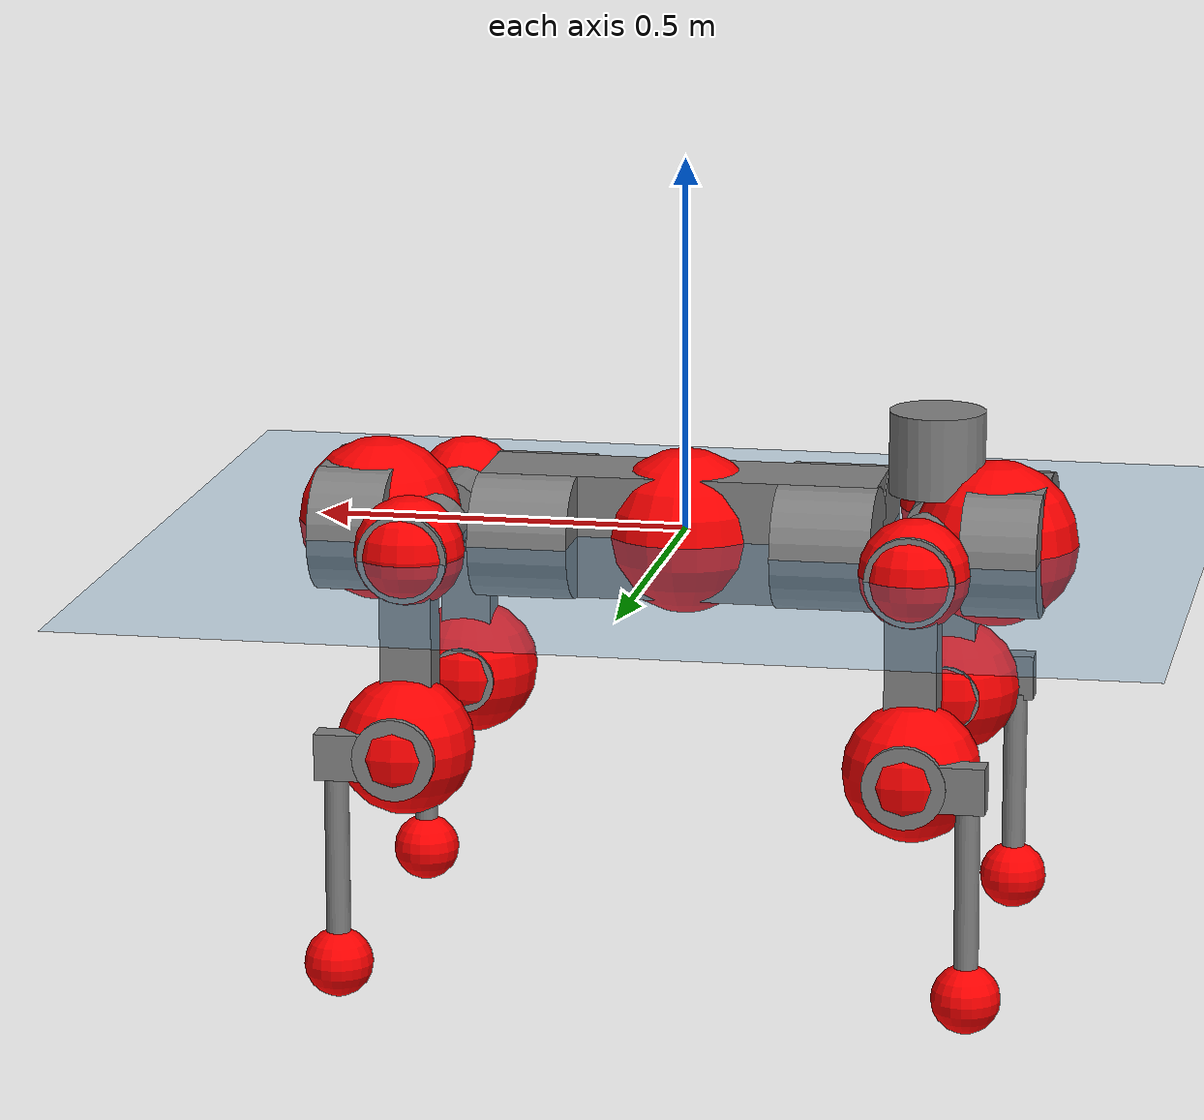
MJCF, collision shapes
<mujoco model="anymal_c">
  <compiler angle="radian" assetdir="assets" balanceinertia="true" inertiafromgeom="false"/>

  <option timestep="0.005" density="1.2" viscosity="2e-05"/>

  <size nkey="1"/>

  <visual>
    <quality shadowsize="8192"/>
    <map shadowclip="0.5"/>
  </visual>

  <default>
    <default class="/">
      <material specular="0" shininess="0.25"/>
      <geom contype="0" conaffinity="0" group="1" solref="-1000 -80"/>
      <site size="0.01 0.005 0.005" group="5"/>
      <general forcelimited="true" forcerange="-80 80" biastype="affine" gainprm="80" biasprm="0 -80 -2"/>
      <default class="anymal_c">
        <joint armature="0.01" damping="0.01" frictionloss="0.1"/>
        <default class="visual">
          <geom type="mesh" group="2"/>
          <default class="visual_zflip"/>
        </default>
        <default class="collision">
          <geom type="cylinder" group="3"/>
          <default class="foot">
            <geom size="0.03 0 0" type="sphere" condim="6" priority="1" friction="0.8 0.02 0.01" solimp="0.015 1 0.03"/>
          </default>
        </default>
      </default>
      <default class="reward_collision_sphere">
        <geom group="5" rgba="1 0 0 1"/>
      </default>
    </default>
  </default>

  <asset>
    <texture type="skybox" colorspace="auto" name="//unnamed_texture_0" builtin="gradient" rgb1="0.95 0.95 0.95" rgb2="0.95 0.95 0.95" width="100" height="600"/>
    <texture type="2d" colorspace="auto" name="texplane" builtin="checker" rgb1="0.345 0.575 0.748" rgb2="0.345 0.575 0.748" markrgb="1 1 1" width="512" height="512"/>
    <texture type="2d" colorspace="linear" name="base" file="base.png"/>
    <texture type="2d" colorspace="linear" name="top_shell" file="top_shell.png"/>
    <texture type="2d" colorspace="linear" name="bottom_shell" file="bottom_shell.png"/>
    <texture type="2d" colorspace="linear" name="remote" file="remote.png"/>
    <texture type="2d" colorspace="linear" name="hatch" file="hatch.png"/>
    <texture type="2d" colorspace="linear" name="handle" file="handle.png"/>
    <texture type="2d" colorspace="linear" name="face" file="face.png"/>
    <texture type="2d" colorspace="linear" name="battery" file="battery.png"/>
    <texture type="2d" colorspace="linear" name="lidar_cage" file="lidar_cage.png"/>
    <texture type="2d" colorspace="linear" name="depth_camera" file="depth_camera.png"/>
    <texture type="2d" colorspace="linear" name="wide_angle_camera" file="wide_angle_camera.png"/>
    <texture type="2d" colorspace="linear" name="lidar" file="lidar.png"/>
    <texture type="2d" colorspace="linear" name="drive" file="drive.png"/>
    <texture type="2d" colorspace="linear" name="hip_l" file="hip_l.png"/>
    <texture type="2d" colorspace="linear" name="shank_l" file="shank_l.png"/>
    <texture type="2d" colorspace="linear" name="foot" file="foot.png"/>
    <texture type="2d" colorspace="linear" name="thigh" file="thigh.png"/>
    <texture type="2d" colorspace="linear" name="shank_r" file="shank_r.png"/>
    <texture type="2d" colorspace="linear" name="hip_r" file="hip_r.png"/>
    <material name="MatPlane" class="/" texture="texplane" texuniform="true" texrepeat="2 2" specular="0.9" shininess="0.5"/>
    <material name="black_plastic" class="/" rgba="0.007 0.007 0.007 1"/>
    <material name="green" class="/" rgba="0.052 0.178 0.033 1"/>
    <material name="red" class="/" rgba="0.178 0.006 0.005 1"/>
    <material name="yellow" class="/" rgba="0.178 0.119 0.006 1"/>
    <material name="lwl" class="/" rgba="0.8 0.8 0.8 1"/>
    <material name="base" class="/" texture="base"/>
    <material name="top_shell" class="/" texture="top_shell"/>
    <material name="bottom_shell" class="/" texture="bottom_shell"/>
    <material name="hip_l" class="/" texture="hip_l"/>
    <material name="thigh" class="/" texture="thigh"/>
    <material name="shank_l" class="/" texture="shank_l"/>
    <material name="foot" class="/" texture="foot"/>
    <material name="hip_r" class="/" texture="hip_r"/>
    <material name="shank" class="/" texture="shank_r"/>
    <material name="hatch" class="/" texture="hatch"/>
    <material name="remote" class="/" texture="remote"/>
    <material name="handle" class="/" texture="handle"/>
    <material name="face" class="/" texture="face"/>
    <material name="depth_camera" class="/" texture="depth_camera"/>
    <material name="wide_angle_camera" class="/" texture="wide_angle_camera"/>
    <material name="battery" class="/" texture="battery"/>
    <material name="lidar_cage" class="/" texture="lidar_cage"/>
    <material name="lidar" class="/" texture="lidar"/>
    <material name="drive" class="/" texture="drive"/>
    <mesh name="base_0" class="/" file="base_0.obj"/>
    <mesh name="base_1" class="/" file="base_1.obj"/>
    <mesh name="base_2" class="/" file="base_2.obj"/>
    <mesh name="base_3" class="/" file="base_3.obj"/>
    <mesh name="base_4" class="/" file="base_4.obj"/>
    <mesh name="base_5" class="/" file="base_5.obj"/>
    <mesh name="top_shell" class="/" file="top_shell.obj"/>
    <mesh name="bottom_shell" class="/" file="bottom_shell.obj"/>
    <mesh name="remote" class="/" file="remote.obj"/>
    <mesh name="handle" class="/" file="handle.obj"/>
    <mesh name="face" class="/" file="face.obj"/>
    <mesh name="wide_angle_camera" class="/" file="wide_angle_camera.obj"/>
    <mesh name="depth_camera" class="/" file="depth_camera.obj"/>
    <mesh name="battery" class="/" file="battery.obj"/>
    <mesh name="lidar_cage" class="/" file="lidar_cage.obj"/>
    <mesh name="lidar" class="/" file="lidar.obj"/>
    <mesh name="drive" class="/" file="drive.obj"/>
    <mesh name="hip_l" class="/" file="hip_l.obj"/>
    <mesh name="thigh" class="/" file="thigh.obj"/>
    <mesh name="shank_l" class="/" file="shank_l.obj"/>
    <mesh name="foot" class="/" file="foot.obj"/>
    <mesh name="hip_r" class="/" file="hip_r.obj"/>
    <mesh name="hatch" class="/" file="hatch.obj"/>
    <mesh name="shank_r" class="/" file="shank_r.obj"/>
  </asset>

  <worldbody>
    <geom name="floor" class="/" size="100 100 0.125" type="plane" group="0" material="MatPlane"/>
    <light name="toplight_shadow" class="/" pos="0 0 5" dir="0.0990148 0.0990148 -0.990148" type="directional" ambient="0.04 0.04 0.04" diffuse="0.55 0.55 0.55" specular="0.12 0.12 0.12"/>
    <light name="toplight_fill" class="/" pos="0 0 5" dir="0.0990148 0.0990148 -0.990148" type="directional" castshadow="false" ambient="0.04 0.04 0.04" diffuse="0.3 0.3 0.3" specular="0.08 0.08 0.08"/>
    <body name="trunk" childclass="anymal_c" pos="-0.000335681 0.00176146 -0.00192736" quat="1 0.000171715 0.000433934 0.000219258">
      <inertial pos="0.000336301 0.00151152 0.0452455" quat="0.497258 0.499892 0.499984 0.50285" mass="15.2325" diaginertia="0.433202 0.407258 0.130608"/>
      <joint name="//unnamed_joint_0" type="free" armature="0" damping="0" frictionloss="0"/>
      <geom name="//unnamed_geom_1" class="visual" material="green" mesh="base_0"/>
      <geom name="//unnamed_geom_2" class="visual" material="yellow" mesh="base_1"/>
      <geom name="//unnamed_geom_3" class="visual" material="red" mesh="base_2"/>
      <geom name="//unnamed_geom_4" class="visual" material="black_plastic" mesh="base_3"/>
      <geom name="//unnamed_geom_5" class="visual" material="lwl" mesh="base_4"/>
      <geom name="//unnamed_geom_6" class="visual" material="base" mesh="base_5"/>
      <geom name="trunk_1" class="collision" size="0.266632 0.0643595 0.082748" type="box"/>
      <geom name="trunk_2" class="collision" size="0.082748 0.0666581" pos="0.202021 0.064449 0" quat="0.707107 0 0.707107 0"/>
      <geom name="trunk_3" class="collision" size="0.082748 0.0666581" pos="-0.202021 0.064449 0" quat="0.707107 0 0.707107 0"/>
      <geom name="trunk_4" class="collision" size="0.082748 0.0666581" pos="0.202021 -0.064449 0" quat="0.707107 0 0.707107 0"/>
      <geom name="trunk_5" class="collision" size="0.082748 0.0666581" pos="-0.202021 -0.064449 0" quat="0.707107 0 0.707107 0"/>
      <geom name="//unnamed_geom_12" class="visual" material="top_shell" mesh="top_shell"/>
      <geom name="//unnamed_geom_13" class="visual" material="bottom_shell" mesh="bottom_shell"/>
      <geom name="//unnamed_geom_14" class="visual" material="remote" mesh="remote"/>
      <geom name="//unnamed_geom_15" class="visual" material="handle" mesh="handle"/>
      <geom name="//unnamed_geom_16" class="visual" pos="0.385001 0 0" quat="1 0 0 0" material="face" mesh="face"/>
      <geom name="trunk_6" class="collision" size="0.0505682 0.0643595 0.082748" pos="0.436086 0 0" type="box"/>
      <geom name="//unnamed_geom_18" class="collision" size="0.082748 0.0505682" pos="0.436086 0.064449 0" quat="0.707107 0 0.707107 0"/>
      <geom name="//unnamed_geom_19" class="collision" size="0.082748 0.0505682" pos="0.436086 -0.064449 0" quat="0.707107 0 0.707107 0"/>
      <geom name="//unnamed_geom_20" class="visual" pos="0.428794 0 -0.0263823" quat="0.965926 0 0.258819 0" material="depth_camera" mesh="depth_camera"/>
      <geom name="//unnamed_geom_21" class="visual" pos="0.476491 0 0.0136037" material="wide_angle_camera" mesh="wide_angle_camera"/>
      <geom name="//unnamed_geom_22" class="visual_zflip" pos="-0.385001 0 0" quat="0 0 0 1" material="face" mesh="face"/>
      <geom name="trunk_7" class="collision" size="0.0505682 0.0643595 0.082748" pos="-0.436086 0 0" quat="0 0 0 1" type="box"/>
      <geom name="//unnamed_geom_24" class="collision" size="0.082748 0.0505682" pos="-0.436086 -0.064449 0" quat="0 -0.707107 0 0.707107"/>
      <geom name="//unnamed_geom_25" class="collision" size="0.082748 0.0505682" pos="-0.436086 0.064449 0" quat="0 -0.707107 0 0.707107"/>
      <geom name="//unnamed_geom_26" class="visual" pos="-0.428794 0 -0.0263823" quat="0 -0.258819 0 0.965926" material="depth_camera" mesh="depth_camera"/>
      <geom name="//unnamed_geom_27" class="visual_zflip" pos="-0.476491 0 0.0136037" quat="0 0 0 1" material="wide_angle_camera" mesh="wide_angle_camera"/>
      <geom name="//unnamed_geom_28" class="visual" material="battery" mesh="battery"/>
      <geom name="//unnamed_geom_29" class="visual" pos="0 0.0702892 0.0265514" quat="0.683013 -0.183013 0.183013 0.683013" material="depth_camera" mesh="depth_camera"/>
      <geom name="//unnamed_geom_30" class="visual" pos="0 -0.0702892 0.0265514" quat="0.683013 0.183013 0.183013 -0.683013" material="depth_camera" mesh="depth_camera"/>
      <geom name="//unnamed_geom_31" class="visual" pos="-0.338095 0 0.0667919" quat="1 0 0 0" material="lidar_cage" mesh="lidar_cage"/>
      <geom name="trunk_8" class="collision" size="0.0643595 0.0551653" pos="-0.338095 0 0.121316"/>
      <geom name="//unnamed_geom_33" class="visual" pos="-0.338095 -3.19442e-06 0.129222" quat="0.707107 0 0 -0.707107" material="lidar" mesh="lidar"/>
      <geom name="//unnamed_geom_34" class="visual" pos="0.278557 0.0957486 2.06443e-10" quat="0.258819 0.965926 0 0" material="drive" mesh="drive"/>
      <geom name="//unnamed_geom_35" class="visual" pos="0.278557 -0.0957486 -2.06443e-10" quat="0.258819 -0.965926 0 0" material="drive" mesh="drive"/>
      <geom name="//unnamed_geom_36" class="visual" pos="-0.278557 0.0957486 -2.06443e-10" quat="0 0 0.965926 -0.258819" material="drive" mesh="drive"/>
      <geom name="//unnamed_geom_37" class="visual" pos="-0.278557 -0.0957486 2.06443e-10" quat="0 0 -0.965926 -0.258819" material="drive" mesh="drive"/>
      <geom name="//unnamed_geom_38" class="visual" pos="0.107744 0 0.0663375" quat="1 0 0 0" material="hatch" mesh="hatch"/>
      <geom name="//unnamed_geom_39" class="reward_collision_sphere" size="0.110331"/>
      <geom name="//unnamed_geom_40" class="reward_collision_sphere" size="0.110331" pos="0.417974 0 0"/>
      <geom name="//unnamed_geom_41" class="reward_collision_sphere" size="0.110331" pos="-0.417974 0 0"/>
      <site name="imu" pos="0.239152 0.0275668 0.0291968" size="0.00919422"/>
      <camera name="track" pos="0 -1.8414 0" quat="0.707107 0.707107 0 0" mode="trackcom"/>
      <camera name="ego_camera" pos="0.417974 0 -0.0363493" quat="-0.5 -0.5 0.5 0.5"/>
      <body name="LF_HIP" pos="0.278528 0.0959426 0.0016835" quat="0.258437 0.966026 0.00148252 0.00087803">
        <inertial pos="0.0508477 -0.0131763 -0.00993536" quat="-0.128723 0.709878 -0.135593 0.679056" mass="2.09963" diaginertia="0.00392753 0.00313119 0.0020234"/>
        <joint name="LF_HAA" pos="0 0 0" axis="0.999958 -0.00672673 -0.00623182" range="-0.762902 0.501747" armature="0.00912864" damping="0.0145949" frictionloss="0.0831516"/>
        <geom name="//unnamed_geom_42" class="visual" pos="0 1.21441e-05 -1.99466e-06" quat="0.258819 -0.965926 0 0" material="hip_l" mesh="hip_l"/>
        <geom name="//unnamed_geom_43" class="visual" pos="0.055637 -0.0673048 -0.0387699" quat="0.183013 -0.683013 0.683013 0.183013" material="drive" mesh="drive"/>
        <geom name="//unnamed_geom_44" class="collision" size="0.0459711 0.0643595" pos="0.055637 -0.0110114 -0.0062748" quat="-0.353553 -0.612372 0.612372 -0.353553"/>
        <body name="LF_THIGH" pos="0.0557755 -0.0677657 -0.0427853" quat="0.183452 -0.682518 0.683301 0.183342">
          <inertial pos="0.0293608 0.00233272 -0.219241" quat="0.992586 -0.0129025 -0.0761444 0.0938593" mass="2.32222" diaginertia="0.0214547 0.0193649 0.00266628"/>
          <joint name="LF_HFE" pos="0 0 0" axis="0.999973 -0.00694355 0.00250104" stiffness="0.00977247" range="-3.13647 3.07124" armature="0.00843854" damping="0.0213858" frictionloss="0.0927493"/>
          <geom name="//unnamed_geom_45" class="visual" pos="0.000161774 2.54917e-07 0" quat="0.707107 0 0 -0.707107" material="thigh" mesh="thigh"/>
          <geom name="//unnamed_geom_46" class="collision" size="0.0597624 0.0367769" pos="0.0371533 0 0" quat="0.5 0.5 -0.5 -0.5"/>
          <geom name="//unnamed_geom_47" class="collision" size="0.0344783 0.0275827 0.129927" pos="0.0278649 0 -0.128417" quat="0.707107 0 0 -0.707107" type="box"/>
          <geom name="//unnamed_geom_48" class="visual" pos="0.0931618 0 -0.258989" quat="1 0 0 0" material="drive" mesh="drive"/>
          <geom name="//unnamed_geom_49" class="collision" size="0.0459711 0.0643595" pos="0.0281436 0 -0.258989" quat="0.707107 0 0.707107 0"/>
          <geom name="//unnamed_geom_50" class="reward_collision_sphere" size="0.0735537" pos="0.0232208 0 0"/>
          <body name="LF_SHANK" pos="0.089037 -0.00303269 -0.258323" quat="1 -1.36108e-05 -0.000134557 0.000155139">
            <inertial pos="0.00252806 -0.0579495 -0.0726827" quat="0.992877 -0.11628 -0.00138616 -0.0259197" mass="0.44051" diaginertia="0.00700772 0.00586562 0.00068651"/>
            <joint name="LF_KFE" pos="0 0 0" axis="0.999975 0.00696536 0.0013124" stiffness="0.0150334" range="-3.12519 3.17069" armature="0.00932125" damping="0.00929195" frictionloss="0.0850255"/>
            <geom name="//unnamed_geom_51" class="visual" pos="5.27508e-05 0.00028127 0" quat="0.707107 0 0 -0.707107" material="shank_l" mesh="shank_l"/>
            <geom name="LF_kfe_act" class="collision" size="0.0551653 0.0183884" pos="0.0185766 0 0" quat="0.5 0.5 -0.5 -0.5"/>
            <geom name="//unnamed_geom_53" class="collision" size="0.0528658 0.0310305 0.017469" pos="0.0185766 -0.0529394 0" quat="0.5 0.5 -0.5 -0.5" type="box"/>
            <geom name="//unnamed_geom_54" class="visual" pos="0.0121212 -0.080885 -0.307124" quat="0.382683 0 0 -0.92388" material="foot" mesh="foot"/>
            <geom name="LF_calf" class="collision" size="0.0160899 0.12987" pos="0.0121213 -0.0809756 -0.153562" quat="0.707107 0 0 -0.707107"/>
            <geom name="LF_foot" class="foot" size="0.0303167" pos="0.0121213 -0.0809756 -0.286678" quat="0.707107 0 0 -0.707107"/>
            <geom name="//unnamed_geom_57" class="reward_collision_sphere" size="0.0919422" pos="-0.0464416 0 0"/>
            <geom name="//unnamed_geom_58" class="reward_collision_sphere" size="0.0459711" pos="0.0121213 -0.0809756 -0.286678"/>
            <site name="LF_foot" class="foot" pos="0.0121213 -0.0809756 -0.286678" quat="0.707107 0 0 -0.707107" size="0.00919422"/>
          </body>
        </body>
      </body>
      <body name="RF_HIP" pos="0.280961 -0.0938365 -0.0023075" quat="0.258843 -0.965919 -5.27242e-05 -9.38072e-06">
        <inertial pos="0.0502208 0.013659 -0.00830901" quat="0.124278 0.682376 0.126392 0.709185" mass="2.09523" diaginertia="0.00382335 0.00323844 0.00202354"/>
        <joint name="RF_HAA" pos="0 0 0" axis="0.999991 -0.000580065 -0.0040912" range="-0.489029 0.726984" armature="0.00909232" damping="0.00625552" frictionloss="0.103942"/>
        <geom name="//unnamed_geom_59" class="visual" pos="0 -1.2144e-05 -1.99465e-06" quat="0.258819 0.965926 0 0" material="hip_r" mesh="hip_r"/>
        <geom name="//unnamed_geom_60" class="visual" pos="0.055637 0.0673048 -0.0387699" quat="0.183013 0.683013 0.683013 -0.183013" material="drive" mesh="drive"/>
        <geom name="//unnamed_geom_61" class="collision" size="0.0459711 0.0643595" pos="0.055637 0.0110114 -0.0062748" quat="-0.353553 0.612372 0.612372 0.353553"/>
        <body name="RF_THIGH" pos="0.0579518 0.0648869 -0.0379345" quat="0.182642 0.683377 0.682599 -0.183565">
          <inertial pos="0.0285416 -0.00028505 -0.22034" quat="0.991032 -0.0172703 -0.0797324 0.105828" mass="2.38502" diaginertia="0.0197759 0.0190956 0.00250422"/>
          <joint name="RF_HFE" pos="0 0 0" axis="0.999952 0.00737078 -0.00638242" stiffness="0.00700474" range="-3.08926 3.12924" armature="0.0094327" damping="0.0128385" frictionloss="0.103206"/>
          <geom name="//unnamed_geom_62" class="visual" pos="0.000161774 2.54917e-07 0" quat="0.707107 0 0 -0.707107" material="thigh" mesh="thigh"/>
          <geom name="//unnamed_geom_63" class="collision" size="0.0597624 0.0367769" pos="0.0371533 0 0" quat="0.5 0.5 0.5 0.5"/>
          <geom name="//unnamed_geom_64" class="collision" size="0.0344783 0.0275827 0.129927" pos="0.0278649 0 -0.128417" quat="0.707107 0 0 0.707107" type="box"/>
          <geom name="//unnamed_geom_65" class="visual" pos="0.0931618 0 -0.258989" quat="1 0 0 0" material="drive" mesh="drive"/>
          <geom name="//unnamed_geom_66" class="collision" size="0.0459711 0.0643595" pos="0.0281436 0 -0.258989" quat="0.707107 0 0.707107 0"/>
          <geom name="//unnamed_geom_67" class="reward_collision_sphere" size="0.0735537" pos="0.0232208 0 0"/>
          <body name="RF_SHANK" pos="0.0922511 0.000908917 -0.257552" quat="1 1.53634e-05 5.61607e-06 -4.38538e-05">
            <inertial pos="0.00777248 0.0560426 -0.0775422" quat="0.992989 0.116007 -0.00835418 0.0210947" mass="0.483535" diaginertia="0.00762562 0.00613368 0.000749049"/>
            <joint name="RF_KFE" pos="0 0 0" axis="0.999993 -0.00323173 0.00165142" range="-3.12492 3.1027" armature="0.00913669" damping="0.00994659" frictionloss="0.0926082"/>
            <geom name="//unnamed_geom_68" class="visual" pos="5.27505e-05 -0.00028127 0" quat="0.707107 0 0 0.707107" material="shank" mesh="shank_r"/>
            <geom name="RF_kfe_act" class="collision" size="0.0551653 0.0183884" pos="0.0185766 0 0" quat="0.5 0.5 0.5 0.5"/>
            <geom name="//unnamed_geom_70" class="collision" size="0.0528658 0.0310305 0.017469" pos="0.0185766 0.0529394 0" quat="0.5 0.5 0.5 0.5" type="box"/>
            <geom name="//unnamed_geom_71" class="visual" pos="0.0121213 0.080885 -0.307124" quat="0.382683 0 0 0.92388" material="foot" mesh="foot"/>
            <geom name="RF_calf" class="collision" size="0.0160899 0.12987" pos="0.0121213 0.0809756 -0.153562" quat="0.707107 0 0 0.707107"/>
            <geom name="RF_foot" class="foot" size="0.0298241" pos="0.0121213 0.0809756 -0.286678" quat="0.707107 0 0 0.707107"/>
            <geom name="//unnamed_geom_74" class="reward_collision_sphere" size="0.0919422" pos="-0.0464416 0 0"/>
            <geom name="//unnamed_geom_75" class="reward_collision_sphere" size="0.0459711" pos="0.0121213 0.0809756 -0.286678"/>
            <site name="RF_foot" class="foot" pos="0.0121213 0.0809756 -0.286678" quat="0.707107 0 0 0.707107" size="0.00919422"/>
          </body>
        </body>
      </body>
      <body name="LH_HIP" pos="-0.279473 0.0940994 0.00231105" quat="-0.000518928 0.000446342 0.965815 -0.259231">
        <inertial pos="0.0518626 0.0129278 -0.00552182" quat="0.132014 0.677236 0.121608 0.713537" mass="2.06631" diaginertia="0.00390792 0.00316652 0.00201929"/>
        <joint name="LH_HAA" pos="0 0 0" axis="1 0.000648215 -0.00031" stiffness="0.00365195" range="-0.562996 0.681619" armature="0.00935165" damping="0.000770667" frictionloss="0.0830301"/>
        <geom name="//unnamed_geom_76" class="visual" pos="0 -1.2144e-05 -1.99465e-06" quat="-0.258819 -0.965926 0 0" material="hip_r" mesh="hip_r"/>
        <geom name="//unnamed_geom_77" class="visual" pos="0.055637 0.0673048 -0.0387699" quat="0.183013 0.683013 0.683013 -0.183013" material="drive" mesh="drive"/>
        <geom name="//unnamed_geom_78" class="collision" size="0.0459711 0.0643595" pos="0.055637 0.0110114 -0.0062748" quat="-0.353553 0.612372 0.612372 0.353553"/>
        <body name="LH_THIGH" pos="0.0544343 0.0655134 -0.035684" quat="0.182936 0.6831 0.682907 -0.183158">
          <inertial pos="0.0303204 0.00165555 -0.219305" quat="0.992024 -0.0119003 -0.0862068 0.0911925" mass="2.38931" diaginertia="0.0222322 0.0202346 0.00274006"/>
          <joint name="LH_HFE" pos="0 0 0" axis="0.999968 -0.00115012 0.00789844" range="-3.10225 3.0912" armature="0.010379" damping="0.0204235" frictionloss="0.0957436"/>
          <geom name="//unnamed_geom_79" class="visual" pos="0.000161774 2.54917e-07 0" quat="0.707107 0 0 -0.707107" material="thigh" mesh="thigh"/>
          <geom name="//unnamed_geom_80" class="collision" size="0.0597624 0.0367769" pos="0.0371533 0 0" quat="0.5 0.5 -0.5 -0.5"/>
          <geom name="//unnamed_geom_81" class="collision" size="0.0344783 0.0275827 0.129927" pos="0.0278649 0 -0.128417" quat="0.707107 0 0 -0.707107" type="box"/>
          <geom name="//unnamed_geom_82" class="visual" pos="0.0931618 0 -0.258989" quat="1 0 0 0" material="drive" mesh="drive"/>
          <geom name="//unnamed_geom_83" class="collision" size="0.0459711 0.0643595" pos="0.0281436 0 -0.258989" quat="0.707107 0 0.707107 0"/>
          <geom name="//unnamed_geom_84" class="reward_collision_sphere" size="0.0735537" pos="0.0232208 0 0"/>
          <body name="LH_SHANK" pos="0.092171 0.00202404 -0.259185" quat="1 6.47918e-05 2.24571e-07 -0.000531371">
            <inertial pos="0.0066269 0.0550437 -0.0725758" quat="0.992586 0.118762 -0.00154915 0.0258044" mass="0.453775" diaginertia="0.00700145 0.0062507 0.000665881"/>
            <joint name="LH_KFE" pos="0 0 0" axis="0.999951 -0.000550352 -0.00988502" stiffness="0.0193747" range="-3.09247 3.14304" armature="0.00979331" damping="0.0185927" frictionloss="0.0984382"/>
            <geom name="//unnamed_geom_85" class="visual" pos="5.27505e-05 -0.00028127 0" quat="-0.707107 0 0 -0.707107" material="shank" mesh="shank_r"/>
            <geom name="LH_kfe_act" class="collision" size="0.0551653 0.0183884" pos="0.0185766 0 0" quat="0.5 0.5 -0.5 -0.5"/>
            <geom name="//unnamed_geom_87" class="collision" size="0.0528658 0.0310305 0.017469" pos="0.0185766 0.0529394 0" quat="0.5 0.5 -0.5 -0.5" type="box"/>
            <geom name="//unnamed_geom_88" class="visual" pos="0.0121213 0.080885 -0.307124" quat="-0.382683 0 0 -0.92388" material="foot" mesh="foot"/>
            <geom name="LH_calf" class="collision" size="0.0160899 0.12987" pos="0.0121213 0.0809756 -0.153562" quat="0.707107 0 0 -0.707107"/>
            <geom name="LH_foot" class="foot" size="0.0307801" pos="0.0121213 0.0809756 -0.286678" quat="0.707107 0 0 -0.707107"/>
            <geom name="//unnamed_geom_91" class="reward_collision_sphere" size="0.0919422" pos="-0.0464416 0 0"/>
            <geom name="//unnamed_geom_92" class="reward_collision_sphere" size="0.0459711" pos="0.0121213 0.0809756 -0.286678"/>
            <site name="LH_foot" class="foot" pos="0.0121213 0.0809756 -0.286678" quat="0.707107 0 0 -0.707107" size="0.00919422"/>
          </body>
        </body>
      </body>
      <body name="RH_HIP" pos="-0.278351 -0.0992215 -0.000464187" quat="-0.000991813 0.000471666 -0.965905 -0.258893">
        <inertial pos="0.0519136 -0.0158833 -0.00800981" quat="-0.127647 0.710481 -0.135993 0.678549" mass="2.3177" diaginertia="0.00411285 0.00329666 0.00213786"/>
        <joint name="RH_HAA" pos="0 0 0" axis="0.999938 0.000277881 0.0111604" range="-0.673977 0.504886" armature="0.00843921" damping="0.0142746" frictionloss="0.103772"/>
        <geom name="//unnamed_geom_93" class="visual" pos="0 1.21441e-05 -1.99466e-06" quat="-0.258819 0.965926 0 0" material="hip_l" mesh="hip_l"/>
        <geom name="//unnamed_geom_94" class="visual" pos="0.055637 -0.0673048 -0.0387699" quat="-0.183013 0.683013 -0.683013 -0.183013" material="drive" mesh="drive"/>
        <geom name="//unnamed_geom_95" class="collision" size="0.0459711 0.0643595" pos="0.055637 -0.0110114 -0.0062748" quat="0.353553 0.612372 -0.612372 0.353553"/>
        <body name="RH_THIGH" pos="0.0579805 -0.0661723 -0.0404668" quat="-0.183642 0.68284 -0.683099 -0.182704">
          <inertial pos="0.0276177 0.000301974 -0.223094" quat="0.993017 -0.00475487 -0.0814535 0.0852083" mass="2.4347" diaginertia="0.021712 0.0197278 0.00259764"/>
          <joint name="RH_HFE" pos="0 0 0" axis="0.999899 0.0132324 -0.00513035" range="-3.08913 3.10364" armature="0.00899031" damping="0.00676365" frictionloss="0.0961351"/>
          <geom name="//unnamed_geom_96" class="visual" pos="0.000161774 2.54917e-07 0" quat="0.707107 0 0 -0.707107" material="thigh" mesh="thigh"/>
          <geom name="//unnamed_geom_97" class="collision" size="0.0597624 0.0367769" pos="0.0371533 0 0" quat="0.5 0.5 0.5 0.5"/>
          <geom name="//unnamed_geom_98" class="collision" size="0.0344783 0.0275827 0.129927" pos="0.0278649 0 -0.128417" quat="0.707107 0 0 0.707107" type="box"/>
          <geom name="//unnamed_geom_99" class="visual" pos="0.0931618 0 -0.258989" quat="1 0 0 0" material="drive" mesh="drive"/>
          <geom name="//unnamed_geom_100" class="collision" size="0.0459711 0.0643595" pos="0.0281436 0 -0.258989" quat="0.707107 0 0.707107 0"/>
          <geom name="//unnamed_geom_101" class="reward_collision_sphere" size="0.0735537" pos="0.0232208 0 0"/>
          <body name="RH_SHANK" pos="0.0903035 0.000117536 -0.258876" quat="0.999999 -0.000576036 -0.000259033 -0.000903367">
            <inertial pos="0.00779599 -0.0560471 -0.0729125" quat="0.993825 -0.109284 0.000847037 -0.0191676" mass="0.453424" diaginertia="0.00675313 0.00599228 0.000690334"/>
            <joint name="RH_KFE" pos="0 0 0" axis="0.999978 -0.000124841 0.00664469" range="-3.13037 3.16602" armature="0.0082986" damping="0.0238117" frictionloss="0.0957032"/>
            <geom name="//unnamed_geom_102" class="visual" pos="5.27508e-05 0.00028127 0" quat="0.707107 0 0 -0.707107" material="shank_l" mesh="shank_l"/>
            <geom name="RH_kfe_act" class="collision" size="0.0551653 0.0183884" pos="0.0185766 0 0" quat="0.5 0.5 0.5 0.5"/>
            <geom name="//unnamed_geom_104" class="collision" size="0.0528658 0.0310305 0.017469" pos="0.0185766 -0.0529394 0" quat="0.5 0.5 0.5 0.5" type="box"/>
            <geom name="//unnamed_geom_105" class="visual" pos="0.0121212 -0.080885 -0.307124" quat="0.382683 0 0 -0.92388" material="foot" mesh="foot"/>
            <geom name="RH_calf" class="collision" size="0.0160899 0.12987" pos="0.0121213 -0.0809756 -0.153562" quat="0.707107 0 0 0.707107"/>
            <geom name="RH_foot" class="foot" size="0.0208061" pos="0.0121213 -0.0809756 -0.286678" quat="0.707107 0 0 0.707107"/>
            <geom name="//unnamed_geom_108" class="reward_collision_sphere" size="0.0919422" pos="-0.0464416 0 0"/>
            <geom name="//unnamed_geom_109" class="reward_collision_sphere" size="0.0459711" pos="0.0121213 -0.0809756 -0.286678"/>
            <site name="RH_foot" class="foot" pos="0.0121213 -0.0809756 -0.286678" quat="0.707107 0 0 0.707107" size="0.00919422"/>
          </body>
        </body>
      </body>
    </body>
  </worldbody>

  <contact>
    <pair class="/" geom1="floor" geom2="LF_foot" name="//unnamed_contact_0"/>
    <pair class="/" geom1="floor" geom2="RF_foot" name="//unnamed_contact_1"/>
    <pair class="/" geom1="floor" geom2="LH_foot" name="//unnamed_contact_2"/>
    <pair class="/" geom1="floor" geom2="RH_foot" name="//unnamed_contact_3"/>
  </contact>

  <actuator>
    <general name="LF_HAA" class="/" joint="LF_HAA" forcerange="-82.3816 82.3816" gainprm="67.7059" biasprm="0 -67.7059 -1.74531"/>
    <general name="LF_HFE" class="/" joint="LF_HFE" forcerange="-70.1279 70.1279" gainprm="67.7059" biasprm="0 -67.7059 -1.74531"/>
    <general name="LF_KFE" class="/" joint="LF_KFE" forcerange="-78.5154 78.5154" gainprm="67.7059" biasprm="0 -67.7059 -1.74531"/>
    <general name="RF_HAA" class="/" joint="RF_HAA" forcerange="-78.4831 78.4831" gainprm="67.7059" biasprm="0 -67.7059 -1.74531"/>
    <general name="RF_HFE" class="/" joint="RF_HFE" forcerange="-77.8846 77.8846" gainprm="67.7059" biasprm="0 -67.7059 -1.74531"/>
    <general name="RF_KFE" class="/" joint="RF_KFE" forcerange="-61.4919 61.4919" gainprm="67.7059" biasprm="0 -67.7059 -1.74531"/>
    <general name="LH_HAA" class="/" joint="LH_HAA" forcerange="-67.3396 67.3396" gainprm="67.7059" biasprm="0 -67.7059 -1.74531"/>
    <general name="LH_HFE" class="/" joint="LH_HFE" forcerange="-79.6358 79.6358" gainprm="67.7059" biasprm="0 -67.7059 -1.74531"/>
    <general name="LH_KFE" class="/" joint="LH_KFE" forcerange="-78.0763 78.0763" gainprm="67.7059" biasprm="0 -67.7059 -1.74531"/>
    <general name="RH_HAA" class="/" joint="RH_HAA" forcerange="-74.6515 74.6515" gainprm="67.7059" biasprm="0 -67.7059 -1.74531"/>
    <general name="RH_HFE" class="/" joint="RH_HFE" forcerange="-83.6803 83.6803" gainprm="67.7059" biasprm="0 -67.7059 -1.74531"/>
    <general name="RH_KFE" class="/" joint="RH_KFE" forcerange="-75.4921 75.4921" gainprm="67.7059" biasprm="0 -67.7059 -1.74531"/>
  </actuator>

  <sensor>
    <gyro site="imu" name="imu_angular_velocity"/>
    <velocimeter site="imu" name="imu_linear_velocity"/>
    <framelinvel objtype="site" objname="LF_foot" name="LF_foot_global_linear_velocity"/>
    <framelinvel objtype="site" objname="RF_foot" name="RF_foot_global_linear_velocity"/>
    <framelinvel objtype="site" objname="LH_foot" name="LH_foot_global_linear_velocity"/>
    <framelinvel objtype="site" objname="RH_foot" name="RH_foot_global_linear_velocity"/>
  </sensor>

  <keyframe>
    <key name="home" qpos="0 0 0.55 1 0 0 0 0 0.4 -0.8 0 -0.4 0.8 0 -0.4 0.8 0 0.4 -0.8"/>
  </keyframe>
</mujoco>
